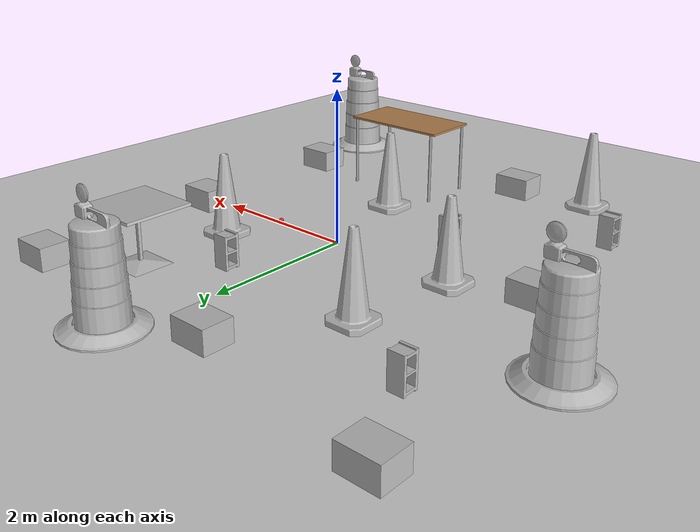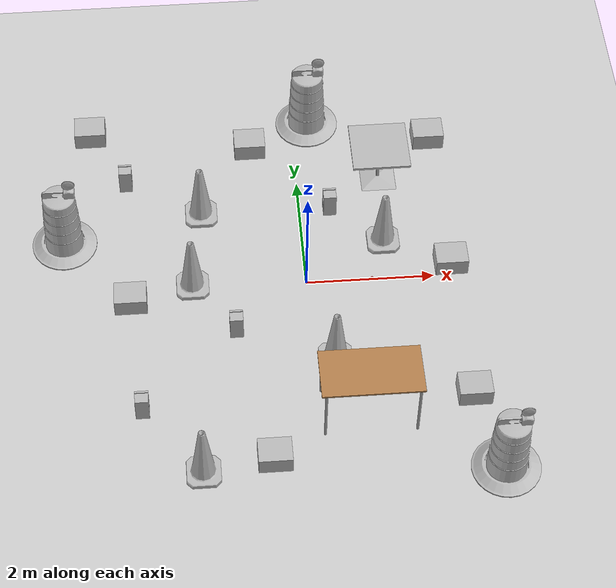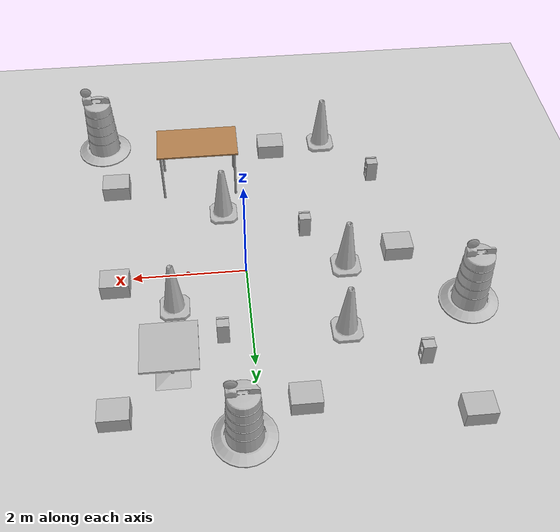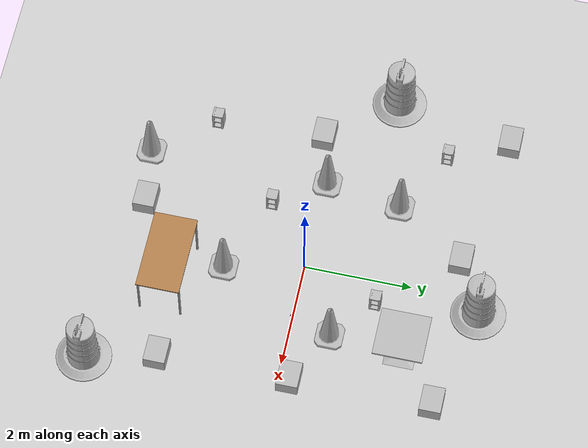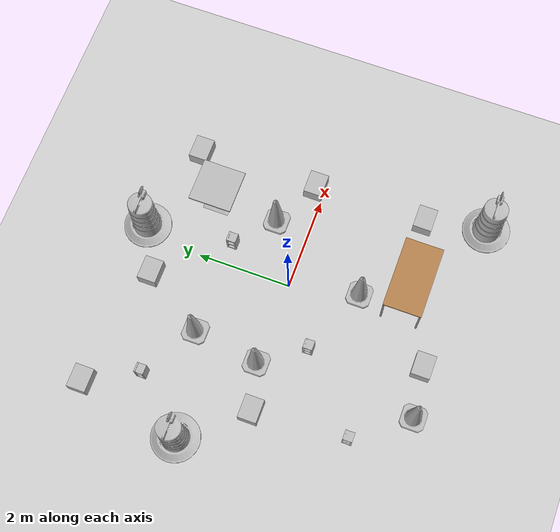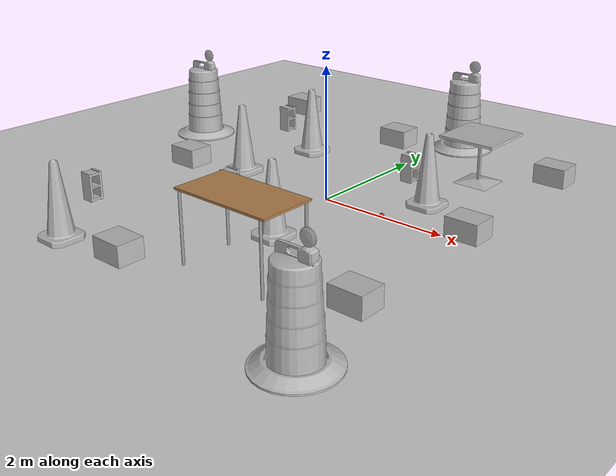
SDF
<sdf version="1.7">
 <world name="default">
  <light name="sun" type="directional">
   <pose>0 0 10 0 -0 0</pose>
   <diffuse>0.8 0.8 0.8 1</diffuse>
   <specular>0.2 0.2 0.2 1</specular>
   <attenuation>
    <range>1000</range>
    <constant>0.9</constant>
    <linear>0.01</linear>
    <quadratic>0.001</quadratic>
   </attenuation>
   <direction>-0.5 0.1 -0.9</direction>
   <spot><inner_angle>0</inner_angle><outer_angle>0</outer_angle><falloff>0</falloff></spot>
  </light>
  <model name="ground_plane">
   <static>1</static>
   <link name="link">
    <collision name="collision">
     <geometry><plane><normal>0 0 1</normal><size>100 100</size></plane></geometry>
     <surface>
      <contact><collide_bitmask>65535</collide_bitmask></contact>
      <friction><ode><mu>100</mu><mu2>50</mu2></ode></friction>
     </surface>
    </collision>
    <visual name="visual">
     <cast_shadows>0</cast_shadows>
     <geometry><plane><normal>0 0 1</normal><size>100 100</size></plane></geometry>
     <material>
      <script><uri>file://media/materials/scripts/gazebo.material</uri><name>Gazebo/Grey</name></script>
     </material>
    </visual>
   </link>
  </model>
  <gravity>0 0 -9.8</gravity>
  <magnetic_field>6e-06 2.3e-05 -4.2e-05</magnetic_field>
  <atmosphere type="adiabatic"/>
  <physics name="default_physics" default="0" type="ode">
   <max_step_size>0.001</max_step_size>
   <real_time_factor>1</real_time_factor>
   <real_time_update_rate>1000</real_time_update_rate>
  </physics>
  <scene><ambient>0.4 0.4 0.4 1</ambient><background>0.7 0.7 0.7 1</background><shadows>1</shadows></scene>
  <spherical_coordinates>
   <surface_model>EARTH_WGS84</surface_model>
   <latitude_deg>0</latitude_deg>
   <longitude_deg>0</longitude_deg>
   <elevation>0</elevation>
   <heading_deg>0</heading_deg>
  </spherical_coordinates>
  <model name="cardboard_box">
   <pose>2.21892 2.80988 0.149 0 -0 0</pose>
   <link name="link">
    <inertial>
     <mass>2</mass>
     <inertia>
      <ixx>0.0416667</ixx>
      <ixy>0</ixy>
      <ixz>0</ixz>
      <iyy>0.0566667</iyy>
      <iyz>0</iyz>
      <izz>0.0683333</izz>
     </inertia>
    </inertial>
    <collision name="collision">
     <geometry><box><size>0.5 0.4 0.3</size></box></geometry>
     <surface>
      <friction><ode><mu>1</mu><mu2>1</mu2></ode></friction>
      <contact><ode><kp>1e+07</kp><kd>1</kd><min_depth>0.001</min_depth><max_vel>0.1</max_vel></ode></contact>
     </surface>
    </collision>
    <visual name="visual">
     <pose>0 0 -0.15 0 -0 0</pose>
     <geometry>
      <mesh><uri>model://cardboard_box/meshes/cardboard_box.dae</uri><scale>1.25932 1.00745 0.755591</scale></mesh>
     </geometry>
    </visual>
   </link>
  </model>
  <model name="cardboard_box_0">
   <pose>-0.713771 2.78908 0.149 0 -0 0</pose>
   <link name="link">
    <inertial>
     <mass>2</mass>
     <inertia>
      <ixx>0.0416667</ixx>
      <ixy>0</ixy>
      <ixz>0</ixz>
      <iyy>0.0566667</iyy>
      <iyz>0</iyz>
      <izz>0.0683333</izz>
     </inertia>
    </inertial>
    <collision name="collision">
     <geometry><box><size>0.5 0.4 0.3</size></box></geometry>
     <surface>
      <friction><ode><mu>1</mu><mu2>1</mu2></ode></friction>
      <contact><ode><kp>1e+07</kp><kd>1</kd><min_depth>0.001</min_depth><max_vel>0.1</max_vel></ode></contact>
     </surface>
    </collision>
    <visual name="visual">
     <pose>0 0 -0.15 0 -0 0</pose>
     <geometry>
      <mesh><uri>model://cardboard_box/meshes/cardboard_box.dae</uri><scale>1.25932 1.00745 0.755591</scale></mesh>
     </geometry>
    </visual>
   </link>
  </model>
  <model name="cardboard_box_1">
   <pose>-2.7313 -0.206003 0.149 0 -0 0</pose>
   <link name="link">
    <inertial>
     <mass>2</mass>
     <inertia>
      <ixx>0.0416667</ixx>
      <ixy>0</ixy>
      <ixz>0</ixz>
      <iyy>0.0566667</iyy>
      <iyz>0</iyz>
      <izz>0.0683333</izz>
     </inertia>
    </inertial>
    <collision name="collision">
     <geometry><box><size>0.5 0.4 0.3</size></box></geometry>
     <surface>
      <friction><ode><mu>1</mu><mu2>1</mu2></ode></friction>
      <contact><ode><kp>1e+07</kp><kd>1</kd><min_depth>0.001</min_depth><max_vel>0.1</max_vel></ode></contact>
     </surface>
    </collision>
    <visual name="visual">
     <pose>0 0 -0.15 0 -0 0</pose>
     <geometry>
      <mesh><uri>model://cardboard_box/meshes/cardboard_box.dae</uri><scale>1.25932 1.00745 0.755591</scale></mesh>
     </geometry>
    </visual>
   </link>
  </model>
  <model name="cardboard_box_2">
   <pose>-0.713773 -3.15949 0.149 0 -0 0</pose>
   <link name="link">
    <inertial>
     <mass>2</mass>
     <inertia>
      <ixx>0.0416667</ixx>
      <ixy>0</ixy>
      <ixz>0</ixz>
      <iyy>0.0566667</iyy>
      <iyz>0</iyz>
      <izz>0.0683333</izz>
     </inertia>
    </inertial>
    <collision name="collision">
     <geometry><box><size>0.5 0.4 0.3</size></box></geometry>
     <surface>
      <friction><ode><mu>1</mu><mu2>1</mu2></ode></friction>
      <contact><ode><kp>1e+07</kp><kd>1</kd><min_depth>0.001</min_depth><max_vel>0.1</max_vel></ode></contact>
     </surface>
    </collision>
    <visual name="visual">
     <pose>0 0 -0.15 0 -0 0</pose>
     <geometry>
      <mesh><uri>model://cardboard_box/meshes/cardboard_box.dae</uri><scale>1.25932 1.00745 0.755591</scale></mesh>
     </geometry>
    </visual>
   </link>
  </model>
  <model name="cardboard_box_3">
   <pose>2.32291 -2.22353 0.149 0 -0 0</pose>
   <link name="link">
    <inertial>
     <mass>2</mass>
     <inertia>
      <ixx>0.0416667</ixx>
      <ixy>0</ixy>
      <ixz>0</ixz>
      <iyy>0.0566667</iyy>
      <iyz>0</iyz>
      <izz>0.0683333</izz>
     </inertia>
    </inertial>
    <collision name="collision">
     <geometry><box><size>0.5 0.4 0.3</size></box></geometry>
     <surface>
      <friction><ode><mu>1</mu><mu2>1</mu2></ode></friction>
      <contact><ode><kp>1e+07</kp><kd>1</kd><min_depth>0.001</min_depth><max_vel>0.1</max_vel></ode></contact>
     </surface>
    </collision>
    <visual name="visual">
     <pose>0 0 -0.15 0 -0 0</pose>
     <geometry>
      <mesh><uri>model://cardboard_box/meshes/cardboard_box.dae</uri><scale>1.25932 1.00745 0.755591</scale></mesh>
     </geometry>
    </visual>
   </link>
  </model>
  <model name="cardboard_box_4">
   <pose>2.28132 0.20998 0.149 0 -0 0</pose>
   <link name="link">
    <inertial>
     <mass>2</mass>
     <inertia>
      <ixx>0.0416667</ixx>
      <ixy>0</ixy>
      <ixz>0</ixz>
      <iyy>0.0566667</iyy>
      <iyz>0</iyz>
      <izz>0.0683333</izz>
     </inertia>
    </inertial>
    <collision name="collision">
     <geometry><box><size>0.5 0.4 0.3</size></box></geometry>
     <surface>
      <friction><ode><mu>1</mu><mu2>1</mu2></ode></friction>
      <contact><ode><kp>1e+07</kp><kd>1</kd><min_depth>0.001</min_depth><max_vel>0.1</max_vel></ode></contact>
     </surface>
    </collision>
    <visual name="visual">
     <pose>0 0 -0.15 0 -0 0</pose>
     <geometry>
      <mesh><uri>model://cardboard_box/meshes/cardboard_box.dae</uri><scale>1.25932 1.00745 0.755591</scale></mesh>
     </geometry>
    </visual>
   </link>
  </model>
  <model name="cinder_block">
   <link name="link">
    <inertial>
     <pose>0 0 0.1016 0 -0 0</pose>
     <mass>5</mass>
     <inertia>
      <ixx>0.028705</ixx>
      <ixy>0</ixy>
      <iyy>0.073708</iyy>
      <ixz>0</ixz>
      <iyz>0</iyz>
      <izz>0.06908</izz>
     </inertia>
    </inertial>
    <visual name="visual">
     <geometry><mesh><uri>model://cinder_block/meshes/cinder_block.dae</uri></mesh></geometry>
    </visual>
    <collision name="left">
     <pose>0 -0.08465 0.1016 0 -0 0</pose>
     <geometry><box><size>0.43495 0.0339 0.2032</size></box></geometry>
     <surface>
      <contact><ode><max_vel>0.1</max_vel><min_depth>0.001</min_depth></ode></contact>
      <friction><ode><mu>1</mu><mu2>1</mu2></ode></friction>
     </surface>
    </collision>
    <collision name="right">
     <pose>0 0.08465 0.1016 0 -0 0</pose>
     <geometry><box><size>0.43495 0.0339 0.2032</size></box></geometry>
     <surface>
      <contact><ode><max_vel>0.1</max_vel><min_depth>0.001</min_depth></ode></contact>
      <friction><ode><mu>1</mu><mu2>1</mu2></ode></friction>
     </surface>
    </collision>
    <collision name="front">
     <pose>0.18625 0 0.1016 0 -0 0</pose>
     <geometry><box><size>0.0339 0.1354 0.203</size></box></geometry>
     <surface>
      <contact><ode><max_vel>0.1</max_vel><min_depth>0.001</min_depth></ode></contact>
      <friction><ode><mu>1</mu><mu2>1</mu2></ode></friction>
     </surface>
    </collision>
    <collision name="middle">
     <pose>0 0 0.1016 0 -0 0</pose>
     <geometry><box><size>0.0339 0.1354 0.203</size></box></geometry>
     <surface>
      <contact><ode><max_vel>0.1</max_vel><min_depth>0.001</min_depth></ode></contact>
      <friction><ode><mu>1</mu><mu2>1</mu2></ode></friction>
     </surface>
    </collision>
    <collision name="back">
     <pose>-0.18625 0 0.1016 0 -0 0</pose>
     <geometry><box><size>0.0339 0.1354 0.203</size></box></geometry>
     <surface>
      <contact><ode><max_vel>0.1</max_vel><min_depth>0.001</min_depth></ode></contact>
      <friction><ode><mu>1</mu><mu2>1</mu2></ode></friction>
     </surface>
    </collision>
   </link>
   <pose>-2.64948 2.14234 0.21746 -0.012112 -1.57073 0.011602</pose>
  </model>
  <model name="cinder_block_0">
   <link name="link">
    <inertial>
     <pose>0 0 0.1016 0 -0 0</pose>
     <mass>5</mass>
     <inertia>
      <ixx>0.028705</ixx>
      <ixy>0</ixy>
      <iyy>0.073708</iyy>
      <ixz>0</ixz>
      <iyz>0</iyz>
      <izz>0.06908</izz>
     </inertia>
    </inertial>
    <visual name="visual">
     <geometry><mesh><uri>model://cinder_block/meshes/cinder_block.dae</uri></mesh></geometry>
    </visual>
    <collision name="left">
     <pose>0 -0.08465 0.1016 0 -0 0</pose>
     <geometry><box><size>0.43495 0.0339 0.2032</size></box></geometry>
     <surface>
      <contact><ode><max_vel>0.1</max_vel><min_depth>0.001</min_depth></ode></contact>
      <friction><ode><mu>1</mu><mu2>1</mu2></ode></friction>
     </surface>
    </collision>
    <collision name="right">
     <pose>0 0.08465 0.1016 0 -0 0</pose>
     <geometry><box><size>0.43495 0.0339 0.2032</size></box></geometry>
     <surface>
      <contact><ode><max_vel>0.1</max_vel><min_depth>0.001</min_depth></ode></contact>
      <friction><ode><mu>1</mu><mu2>1</mu2></ode></friction>
     </surface>
    </collision>
    <collision name="front">
     <pose>0.18625 0 0.1016 0 -0 0</pose>
     <geometry><box><size>0.0339 0.1354 0.203</size></box></geometry>
     <surface>
      <contact><ode><max_vel>0.1</max_vel><min_depth>0.001</min_depth></ode></contact>
      <friction><ode><mu>1</mu><mu2>1</mu2></ode></friction>
     </surface>
    </collision>
    <collision name="middle">
     <pose>0 0 0.1016 0 -0 0</pose>
     <geometry><box><size>0.0339 0.1354 0.203</size></box></geometry>
     <surface>
      <contact><ode><max_vel>0.1</max_vel><min_depth>0.001</min_depth></ode></contact>
      <friction><ode><mu>1</mu><mu2>1</mu2></ode></friction>
     </surface>
    </collision>
    <collision name="back">
     <pose>-0.18625 0 0.1016 0 -0 0</pose>
     <geometry><box><size>0.0339 0.1354 0.203</size></box></geometry>
     <surface>
      <contact><ode><max_vel>0.1</max_vel><min_depth>0.001</min_depth></ode></contact>
      <friction><ode><mu>1</mu><mu2>1</mu2></ode></friction>
     </surface>
    </collision>
   </link>
   <pose>-2.5034 -2.21278 0.217473 -1.57082 -1.57079 1.56841</pose>
  </model>
  <model name="cinder_block_1">
   <link name="link">
    <inertial>
     <pose>0 0 0.1016 0 -0 0</pose>
     <mass>5</mass>
     <inertia>
      <ixx>0.028705</ixx>
      <ixy>0</ixy>
      <iyy>0.073708</iyy>
      <ixz>0</ixz>
      <iyz>0</iyz>
      <izz>0.06908</izz>
     </inertia>
    </inertial>
    <visual name="visual">
     <geometry><mesh><uri>model://cinder_block/meshes/cinder_block.dae</uri></mesh></geometry>
    </visual>
    <collision name="left">
     <pose>0 -0.08465 0.1016 0 -0 0</pose>
     <geometry><box><size>0.43495 0.0339 0.2032</size></box></geometry>
     <surface>
      <contact><ode><max_vel>0.1</max_vel><min_depth>0.001</min_depth></ode></contact>
      <friction><ode><mu>1</mu><mu2>1</mu2></ode></friction>
     </surface>
    </collision>
    <collision name="right">
     <pose>0 0.08465 0.1016 0 -0 0</pose>
     <geometry><box><size>0.43495 0.0339 0.2032</size></box></geometry>
     <surface>
      <contact><ode><max_vel>0.1</max_vel><min_depth>0.001</min_depth></ode></contact>
      <friction><ode><mu>1</mu><mu2>1</mu2></ode></friction>
     </surface>
    </collision>
    <collision name="front">
     <pose>0.18625 0 0.1016 0 -0 0</pose>
     <geometry><box><size>0.0339 0.1354 0.203</size></box></geometry>
     <surface>
      <contact><ode><max_vel>0.1</max_vel><min_depth>0.001</min_depth></ode></contact>
      <friction><ode><mu>1</mu><mu2>1</mu2></ode></friction>
     </surface>
    </collision>
    <collision name="middle">
     <pose>0 0 0.1016 0 -0 0</pose>
     <geometry><box><size>0.0339 0.1354 0.203</size></box></geometry>
     <surface>
      <contact><ode><max_vel>0.1</max_vel><min_depth>0.001</min_depth></ode></contact>
      <friction><ode><mu>1</mu><mu2>1</mu2></ode></friction>
     </surface>
    </collision>
    <collision name="back">
     <pose>-0.18625 0 0.1016 0 -0 0</pose>
     <geometry><box><size>0.0339 0.1354 0.203</size></box></geometry>
     <surface>
      <contact><ode><max_vel>0.1</max_vel><min_depth>0.001</min_depth></ode></contact>
      <friction><ode><mu>1</mu><mu2>1</mu2></ode></friction>
     </surface>
    </collision>
   </link>
   <pose>0.585638 1.42385 0.216946 -1.57082 -1.57078 1.57082</pose>
  </model>
  <model name="cinder_block_2">
   <link name="link">
    <inertial>
     <pose>0 0 0.1016 0 -0 0</pose>
     <mass>5</mass>
     <inertia>
      <ixx>0.028705</ixx>
      <ixy>0</ixy>
      <iyy>0.073708</iyy>
      <ixz>0</ixz>
      <iyz>0</iyz>
      <izz>0.06908</izz>
     </inertia>
    </inertial>
    <visual name="visual">
     <geometry><mesh><uri>model://cinder_block/meshes/cinder_block.dae</uri></mesh></geometry>
    </visual>
    <collision name="left">
     <pose>0 -0.08465 0.1016 0 -0 0</pose>
     <geometry><box><size>0.43495 0.0339 0.2032</size></box></geometry>
     <surface>
      <contact><ode><max_vel>0.1</max_vel><min_depth>0.001</min_depth></ode></contact>
      <friction><ode><mu>1</mu><mu2>1</mu2></ode></friction>
     </surface>
    </collision>
    <collision name="right">
     <pose>0 0.08465 0.1016 0 -0 0</pose>
     <geometry><box><size>0.43495 0.0339 0.2032</size></box></geometry>
     <surface>
      <contact><ode><max_vel>0.1</max_vel><min_depth>0.001</min_depth></ode></contact>
      <friction><ode><mu>1</mu><mu2>1</mu2></ode></friction>
     </surface>
    </collision>
    <collision name="front">
     <pose>0.18625 0 0.1016 0 -0 0</pose>
     <geometry><box><size>0.0339 0.1354 0.203</size></box></geometry>
     <surface>
      <contact><ode><max_vel>0.1</max_vel><min_depth>0.001</min_depth></ode></contact>
      <friction><ode><mu>1</mu><mu2>1</mu2></ode></friction>
     </surface>
    </collision>
    <collision name="middle">
     <pose>0 0 0.1016 0 -0 0</pose>
     <geometry><box><size>0.0339 0.1354 0.203</size></box></geometry>
     <surface>
      <contact><ode><max_vel>0.1</max_vel><min_depth>0.001</min_depth></ode></contact>
      <friction><ode><mu>1</mu><mu2>1</mu2></ode></friction>
     </surface>
    </collision>
    <collision name="back">
     <pose>-0.18625 0 0.1016 0 -0 0</pose>
     <geometry><box><size>0.0339 0.1354 0.203</size></box></geometry>
     <surface>
      <contact><ode><max_vel>0.1</max_vel><min_depth>0.001</min_depth></ode></contact>
      <friction><ode><mu>1</mu><mu2>1</mu2></ode></friction>
     </surface>
    </collision>
   </link>
   <pose>-1.03349 -0.85277 0.217474 -1.57074 -1.57079 1.57354</pose>
  </model>
  <model name="cafe_table">
   <static>1</static>
   <link name="link">
    <collision name="surface">
     <pose>0 0 0.755 0 -0 0</pose>
     <geometry><box><size>0.913 0.913 0.04</size></box></geometry>
    </collision>
    <collision name="column">
     <pose>0 0 0.37 0 -0 0</pose>
     <geometry><box><size>0.042 0.042 0.74</size></box></geometry>
    </collision>
    <collision name="base">
     <pose>0 0 0.02 0 -0 0</pose>
     <geometry><box><size>0.56 0.56 0.04</size></box></geometry>
    </collision>
    <visual name="visual">
     <geometry><mesh><uri>model://cafe_table/meshes/cafe_table.dae</uri></mesh></geometry>
    </visual>
   </link>
   <pose>1.32831 2.06495 0 0 -0 0</pose>
  </model>
  <model name="table">
   <static>1</static>
   <link name="link">
    <collision name="surface">
     <pose>0 0 1 0 -0 0</pose>
     <geometry><box><size>1.5 0.8 0.03</size></box></geometry>
     <surface><friction><ode><mu>0.6</mu><mu2>0.6</mu2></ode></friction></surface>
    </collision>
    <visual name="visual1">
     <pose>0 0 1 0 -0 0</pose>
     <geometry><box><size>1.5 0.8 0.03</size></box></geometry>
     <material>
      <script><uri>file://media/materials/scripts/gazebo.material</uri><name>Gazebo/Wood</name></script>
     </material>
    </visual>
    <collision name="front_left_leg">
     <pose>0.68 0.38 0.5 0 -0 0</pose>
     <geometry><cylinder><radius>0.02</radius><length>1</length></cylinder></geometry>
    </collision>
    <visual name="front_left_leg">
     <pose>0.68 0.38 0.5 0 -0 0</pose>
     <geometry><cylinder><radius>0.02</radius><length>1</length></cylinder></geometry>
     <material>
      <script><uri>file://media/materials/scripts/gazebo.material</uri><name>Gazebo/Grey</name></script>
     </material>
    </visual>
    <collision name="front_right_leg">
     <pose>0.68 -0.38 0.5 0 -0 0</pose>
     <geometry><cylinder><radius>0.02</radius><length>1</length></cylinder></geometry>
    </collision>
    <visual name="front_right_leg">
     <pose>0.68 -0.38 0.5 0 -0 0</pose>
     <geometry><cylinder><radius>0.02</radius><length>1</length></cylinder></geometry>
     <material>
      <script><uri>file://media/materials/scripts/gazebo.material</uri><name>Gazebo/Grey</name></script>
     </material>
    </visual>
    <collision name="back_right_leg">
     <pose>-0.68 -0.38 0.5 0 -0 0</pose>
     <geometry><cylinder><radius>0.02</radius><length>1</length></cylinder></geometry>
    </collision>
    <visual name="back_right_leg">
     <pose>-0.68 -0.38 0.5 0 -0 0</pose>
     <geometry><cylinder><radius>0.02</radius><length>1</length></cylinder></geometry>
     <material>
      <script><uri>file://media/materials/scripts/gazebo.material</uri><name>Gazebo/Grey</name></script>
     </material>
    </visual>
    <collision name="back_left_leg">
     <pose>-0.68 0.38 0.5 0 -0 0</pose>
     <geometry><cylinder><radius>0.02</radius><length>1</length></cylinder></geometry>
    </collision>
    <visual name="back_left_leg">
     <pose>-0.68 0.38 0.5 0 -0 0</pose>
     <geometry><cylinder><radius>0.02</radius><length>1</length></cylinder></geometry>
     <material>
      <script><uri>file://media/materials/scripts/gazebo.material</uri><name>Gazebo/Grey</name></script>
     </material>
    </visual>
   </link>
   <pose>0.731417 -2.38963 0 0 -0 0</pose>
  </model>
  <model name="Construction Cone">
   <link name="link">
    <collision name="collision">
     <geometry>
      <mesh><scale>10 10 10</scale><uri>model://construction_cone/meshes/construction_cone.dae</uri></mesh>
     </geometry>
    </collision>
    <visual name="visual">
     <geometry>
      <mesh><scale>10 10 10</scale><uri>model://construction_cone/meshes/construction_cone.dae</uri></mesh>
     </geometry>
    </visual>
    <inertial>
     <inertia><ixx>1</ixx><ixy>0</ixy><ixz>0</ixz><iyy>1</iyy><iyz>0</iyz><izz>1</izz></inertia>
     <mass>1</mass>
    </inertial>
   </link>
   <pose>-1.56772 1.46806 -0 0 -1e-06 0</pose>
  </model>
  <model name="Construction Cone_0">
   <link name="link">
    <collision name="collision">
     <geometry>
      <mesh><scale>10 10 10</scale><uri>model://construction_cone/meshes/construction_cone.dae</uri></mesh>
     </geometry>
    </collision>
    <visual name="visual">
     <geometry>
      <mesh><scale>10 10 10</scale><uri>model://construction_cone/meshes/construction_cone.dae</uri></mesh>
     </geometry>
    </visual>
    <inertial>
     <inertia><ixx>1</ixx><ixy>0</ixy><ixz>0</ixz><iyy>1</iyy><iyz>0</iyz><izz>1</izz></inertia>
     <mass>1</mass>
    </inertial>
   </link>
   <pose>0.322436 -1.45008 -0 0 -1e-06 0</pose>
  </model>
  <model name="Construction Cone_1">
   <link name="link">
    <collision name="collision">
     <geometry>
      <mesh><scale>10 10 10</scale><uri>model://construction_cone/meshes/construction_cone.dae</uri></mesh>
     </geometry>
    </collision>
    <visual name="visual">
     <geometry>
      <mesh><scale>10 10 10</scale><uri>model://construction_cone/meshes/construction_cone.dae</uri></mesh>
     </geometry>
    </visual>
    <inertial>
     <inertia><ixx>1</ixx><ixy>0</ixy><ixz>0</ixz><iyy>1</iyy><iyz>0</iyz><izz>1</izz></inertia>
     <mass>1</mass>
    </inertial>
   </link>
   <pose>1.27304 0.738528 -0 0 -0 0</pose>
  </model>
  <model name="Construction Cone_2">
   <link name="link">
    <collision name="collision">
     <geometry>
      <mesh><scale>10 10 10</scale><uri>model://construction_cone/meshes/construction_cone.dae</uri></mesh>
     </geometry>
    </collision>
    <visual name="visual">
     <geometry>
      <mesh><scale>10 10 10</scale><uri>model://construction_cone/meshes/construction_cone.dae</uri></mesh>
     </geometry>
    </visual>
    <inertial>
     <inertia><ixx>1</ixx><ixy>0</ixy><ixz>0</ixz><iyy>1</iyy><iyz>0</iyz><izz>1</izz></inertia>
     <mass>1</mass>
    </inertial>
   </link>
   <pose>-1.75563 -3.30707 -0 0 -1e-06 0</pose>
  </model>
  <model name="Construction Cone_3">
   <link name="link">
    <collision name="collision">
     <geometry>
      <mesh><scale>10 10 10</scale><uri>model://construction_cone/meshes/construction_cone.dae</uri></mesh>
     </geometry>
    </collision>
    <visual name="visual">
     <geometry>
      <mesh><scale>10 10 10</scale><uri>model://construction_cone/meshes/construction_cone.dae</uri></mesh>
     </geometry>
    </visual>
    <inertial>
     <inertia><ixx>1</ixx><ixy>0</ixy><ixz>0</ixz><iyy>1</iyy><iyz>0</iyz><izz>1</izz></inertia>
     <mass>1</mass>
    </inertial>
   </link>
   <pose>-1.76669 0.053209 -0 0 -1e-06 0</pose>
  </model>
  <model name="Construction Barrel">
   <link name="link">
    <inertial>
     <pose>0 0 0.4 0 -0 0</pose>
     <mass>500</mass>
     <inertia><ixx>51.2096</ixx><iyy>51.2096</iyy><izz>25</izz><ixy>0</ixy><ixz>0</ixz><iyz>0</iyz></inertia>
    </inertial>
    <collision name="collision">
     <geometry><mesh><uri>model://construction_barrel/meshes/construction_barrel.dae</uri></mesh></geometry>
    </collision>
    <visual name="visual">
     <geometry><mesh><uri>model://construction_barrel/meshes/construction_barrel.dae</uri></mesh></geometry>
    </visual>
   </link>
   <pose>0.267054 3.29188 -0 0 0 -2.6e-05</pose>
  </model>
  <model name="Construction Barrel_0">
   <link name="link">
    <inertial>
     <pose>0 0 0.4 0 -0 0</pose>
     <mass>500</mass>
     <inertia><ixx>51.2096</ixx><iyy>51.2096</iyy><izz>25</izz><ixy>0</ixy><ixz>0</ixz><iyz>0</iyz></inertia>
    </inertial>
    <collision name="collision">
     <geometry><mesh><uri>model://construction_barrel/meshes/construction_barrel.dae</uri></mesh></geometry>
    </collision>
    <visual name="visual">
     <geometry><mesh><uri>model://construction_barrel/meshes/construction_barrel.dae</uri></mesh></geometry>
    </visual>
   </link>
   <pose>-3.74533 1.0259 -1e-06 4e-06 -2e-06 -2.3e-05</pose>
  </model>
  <model name="Construction Barrel_1">
   <link name="link">
    <inertial>
     <pose>0 0 0.4 0 -0 0</pose>
     <mass>500</mass>
     <inertia><ixx>51.2096</ixx><iyy>51.2096</iyy><izz>25</izz><ixy>0</ixy><ixz>0</ixz><iyz>0</iyz></inertia>
    </inertial>
    <collision name="collision">
     <geometry><mesh><uri>model://construction_barrel/meshes/construction_barrel.dae</uri></mesh></geometry>
    </collision>
    <visual name="visual">
     <geometry><mesh><uri>model://construction_barrel/meshes/construction_barrel.dae</uri></mesh></geometry>
    </visual>
   </link>
   <pose>2.61043 -3.5171 0 0 0 -2.5e-05</pose>
  </model>
  <model name="cardboard_box_5">
   <pose>-3.31418 3.22558 0.149 0 -0 0</pose>
   <link name="link">
    <inertial>
     <mass>2</mass>
     <inertia>
      <ixx>0.0416667</ixx>
      <ixy>0</ixy>
      <ixz>0</ixz>
      <iyy>0.0566667</iyy>
      <iyz>0</iyz>
      <izz>0.0683333</izz>
     </inertia>
    </inertial>
    <collision name="collision">
     <geometry><box><size>0.5 0.4 0.3</size></box></geometry>
     <surface>
      <friction><ode><mu>1</mu><mu2>1</mu2></ode></friction>
      <contact><ode><kp>1e+07</kp><kd>1</kd><min_depth>0.001</min_depth><max_vel>0.1</max_vel></ode></contact>
     </surface>
    </collision>
    <visual name="visual">
     <pose>0 0 -0.15 0 -0 0</pose>
     <geometry>
      <mesh><uri>model://cardboard_box/meshes/cardboard_box.dae</uri><scale>1.25932 1.00745 0.755591</scale></mesh>
     </geometry>
    </visual>
   </link>
  </model>
  <model name="unit_sphere">
   <link name="link">
    <inertial>
     <mass>1</mass>
     <inertia><ixx>0.1</ixx><ixy>0</ixy><ixz>0</ixz><iyy>0.1</iyy><iyz>0</iyz><izz>0.1</izz></inertia>
    </inertial>
    <visual name="visual">
     <geometry><sphere><radius>0.033</radius></sphere></geometry>
     <material>
      <script><name>Gazebo/Red</name><uri>file://media/materials/scripts/gazebo.material</uri></script>
      <shader type="pixel"><normal_map>__default__</normal_map></shader>
      <ambient>0.4 1 0.1 1</ambient>
      <diffuse>0.7 0.7 0.7 1</diffuse>
      <specular>0.01 0.01 0.01 1</specular>
      <emissive>0 0 0 1</emissive>
     </material>
    </visual>
    <collision name="collision">
     <geometry><sphere><radius>0.033</radius></sphere></geometry>
     <surface>
      <friction>
       <ode><mu>1</mu><mu2>1</mu2><fdir1>0 0 0</fdir1><slip1>0</slip1><slip2>0</slip2></ode>
       <torsional>
        <coefficient>1</coefficient>
        <patch_radius>0</patch_radius>
        <surface_radius>0</surface_radius>
        <use_patch_radius>1</use_patch_radius>
        <ode><slip>0</slip></ode>
       </torsional>
      </friction>
      <bounce><restitution_coefficient>0</restitution_coefficient><threshold>1e+06</threshold></bounce>
      <contact>
       <collide_without_contact>0</collide_without_contact>
       <collide_without_contact_bitmask>1</collide_without_contact_bitmask>
       <collide_bitmask>1</collide_bitmask>
       <ode>
        <soft_cfm>0</soft_cfm>
        <soft_erp>0.2</soft_erp>
        <kp>1e+13</kp>
        <kd>1</kd>
        <max_vel>0.01</max_vel>
        <min_depth>0</min_depth>
       </ode>
       <bullet>
        <split_impulse>1</split_impulse>
        <split_impulse_penetration_threshold>-0.01</split_impulse_penetration_threshold>
        <soft_cfm>0</soft_cfm>
        <soft_erp>0.2</soft_erp>
        <kp>1e+13</kp>
        <kd>1</kd>
       </bullet>
      </contact>
     </surface>
    </collision>
   </link>
   <static>0</static>
   <pose>1.02605 -0.009669 0.033 0 -0 0</pose>
  </model>
 </world>
</sdf>
